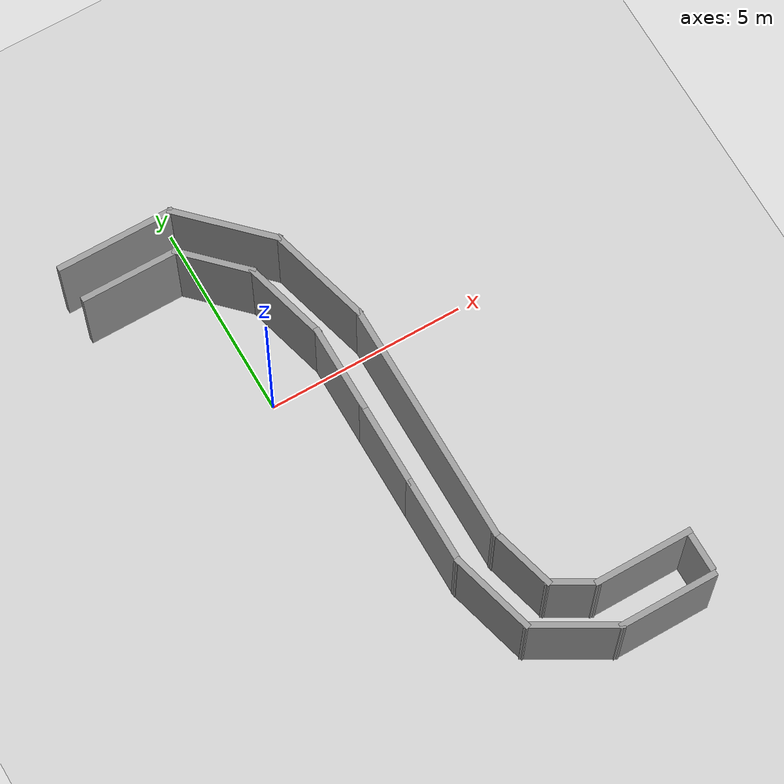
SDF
<sdf version="1.6">
 <world name="default">
  <light name="sun" type="directional">
   <pose>0 0 10 0 -0 0</pose>
   <diffuse>0.8 0.8 0.8 1</diffuse>
   <specular>0.2 0.2 0.2 1</specular>
   <attenuation>
    <range>1000</range>
    <constant>0.9</constant>
    <linear>0.01</linear>
    <quadratic>0.001</quadratic>
   </attenuation>
   <direction>-0.5 0.1 -0.9</direction>
  </light>
  <model name="ground_plane">
   <static>1</static>
   <link name="link">
    <collision name="collision">
     <geometry><plane><normal>0 0 1</normal><size>100 100</size></plane></geometry>
     <surface>
      <contact><collide_bitmask>65535</collide_bitmask></contact>
      <friction><ode><mu>100</mu><mu2>50</mu2></ode></friction>
     </surface>
    </collision>
    <visual name="visual">
     <cast_shadows>0</cast_shadows>
     <geometry><plane><normal>0 0 1</normal><size>100 100</size></plane></geometry>
     <material>
      <script><uri>file://media/materials/scripts/gazebo.material</uri><name>Gazebo/Grey</name></script>
     </material>
    </visual>
   </link>
  </model>
  <gravity>0 0 -9.8</gravity>
  <magnetic_field>6e-06 2.3e-05 -4.2e-05</magnetic_field>
  <atmosphere type="adiabatic"/>
  <physics name="default_physics" default="0" type="ode">
   <max_step_size>0.001</max_step_size>
   <real_time_factor>1</real_time_factor>
   <real_time_update_rate>1000</real_time_update_rate>
  </physics>
  <scene><ambient>0.4 0.4 0.4 1</ambient><background>0.7 0.7 0.7 1</background><shadows>1</shadows></scene>
  <spherical_coordinates>
   <surface_model>EARTH_WGS84</surface_model>
   <latitude_deg>0</latitude_deg>
   <longitude_deg>0</longitude_deg>
   <elevation>0</elevation>
   <heading_deg>0</heading_deg>
  </spherical_coordinates>
  <model name="takis">
   <pose>1.605 -2.26554 0 0 -0 0</pose>
   <link name="Wall_10">
    <collision name="Wall_10_Collision">
     <geometry><box><size>2.25 0.15 2.5</size></box></geometry>
     <pose>0 0 1.25 0 -0 0</pose>
    </collision>
    <visual name="Wall_10_Visual">
     <pose>0 0 1.25 0 -0 0</pose>
     <geometry><box><size>2.25 0.15 2.5</size></box></geometry>
     <material>
      <script><uri>file://media/materials/scripts/gazebo.material</uri><name>Gazebo/Grey</name></script>
      <ambient>1 1 1 1</ambient>
     </material>
     <meta><layer>0</layer></meta>
    </visual>
    <pose>-0.221378 1.49694 0 0 -0 1.5708</pose>
   </link>
   <link name="Wall_11">
    <collision name="Wall_11_Collision">
     <geometry><box><size>2.25 0.15 2.5</size></box></geometry>
     <pose>0 0 1.25 0 -0 0</pose>
    </collision>
    <visual name="Wall_11_Visual">
     <pose>0 0 1.25 0 -0 0</pose>
     <geometry><box><size>2.25 0.15 2.5</size></box></geometry>
     <material>
      <script><uri>file://media/materials/scripts/gazebo.material</uri><name>Gazebo/Grey</name></script>
      <ambient>1 1 1 1</ambient>
     </material>
     <meta><layer>0</layer></meta>
    </visual>
    <pose>-0.493138 3.56116 0 0 -0 1.8326</pose>
   </link>
   <link name="Wall_12">
    <collision name="Wall_12_Collision">
     <geometry><box><size>2 0.15 2.5</size></box></geometry>
     <pose>0 0 1.25 0 -0 0</pose>
    </collision>
    <visual name="Wall_12_Visual">
     <pose>0 0 1.25 0 -0 0</pose>
     <geometry><box><size>2 0.15 2.5</size></box></geometry>
     <material>
      <script><uri>file://media/materials/scripts/gazebo.material</uri><name>Gazebo/Grey</name></script>
      <ambient>1 1 1 1</ambient>
     </material>
     <meta><layer>0</layer></meta>
    </visual>
    <pose>-1.41897 5.22946 0 0 -0 2.35619</pose>
   </link>
   <link name="Wall_13">
    <collision name="Wall_13_Collision">
     <geometry><box><size>2.5 0.15 2.5</size></box></geometry>
     <pose>0 0 1.25 0 -0 0</pose>
    </collision>
    <visual name="Wall_13_Visual">
     <pose>0 0 1.25 0 -0 0</pose>
     <geometry><box><size>2.5 0.15 2.5</size></box></geometry>
     <material>
      <script><uri>file://media/materials/scripts/gazebo.material</uri><name>Gazebo/Grey</name></script>
      <ambient>1 1 1 1</ambient>
     </material>
     <meta><layer>0</layer></meta>
    </visual>
    <pose>-3.24805 5.88354 0 0 -0 3.14159</pose>
   </link>
   <link name="Wall_17">
    <collision name="Wall_17_Collision">
     <geometry><box><size>2.5 0.15 2.5</size></box></geometry>
     <pose>0 0 1.25 0 -0 0</pose>
    </collision>
    <visual name="Wall_17_Visual">
     <pose>0 0 1.25 0 -0 0</pose>
     <geometry><box><size>2.5 0.15 2.5</size></box></geometry>
     <material>
      <script><uri>file://media/materials/scripts/gazebo.material</uri><name>Gazebo/Grey</name></script>
      <ambient>1 1 1 1</ambient>
     </material>
     <meta><layer>0</layer></meta>
    </visual>
    <pose>3.36407 -5.71748 0 0 -0 3.14159</pose>
   </link>
   <link name="Wall_18">
    <collision name="Wall_18_Collision">
     <geometry><box><size>1.25 0.15 2.5</size></box></geometry>
     <pose>0 0 1.25 0 -0 0</pose>
    </collision>
    <visual name="Wall_18_Visual">
     <pose>0 0 1.25 0 -0 0</pose>
     <geometry><box><size>1.25 0.15 2.5</size></box></geometry>
     <material>
      <script><uri>file://media/materials/scripts/gazebo.material</uri><name>Gazebo/Grey</name></script>
      <ambient>1 1 1 1</ambient>
     </material>
     <meta><layer>0</layer></meta>
    </visual>
    <pose>1.71276 -5.44248 0 0 -0 2.61799</pose>
   </link>
   <link name="Wall_19">
    <collision name="Wall_19_Collision">
     <geometry><box><size>1.75 0.15 2.5</size></box></geometry>
     <pose>0 0 1.25 0 -0 0</pose>
    </collision>
    <visual name="Wall_19_Visual">
     <pose>0 0 1.25 0 -0 0</pose>
     <geometry><box><size>1.75 0.15 2.5</size></box></geometry>
     <material>
      <script><uri>file://media/materials/scripts/gazebo.material</uri><name>Gazebo/Grey</name></script>
      <ambient>1 1 1 1</ambient>
     </material>
     <meta><layer>0</layer></meta>
    </visual>
    <pose>1.02939 -4.39474 0 0 -0 1.8326</pose>
   </link>
   <link name="Wall_2">
    <collision name="Wall_2_Collision">
     <geometry><box><size>2.5 0.15 2.5</size></box></geometry>
     <pose>0 0 1.25 0 -0 0</pose>
    </collision>
    <visual name="Wall_2_Visual">
     <pose>0 0 1.25 0 -0 0</pose>
     <geometry><box><size>2.5 0.15 2.5</size></box></geometry>
     <material>
      <script><uri>file://media/materials/scripts/gazebo.material</uri><name>Gazebo/Grey</name></script>
      <ambient>1 1 1 1</ambient>
     </material>
     <meta><layer>0</layer></meta>
    </visual>
    <pose>3.3158 -6.8315 0 0 -0 0</pose>
   </link>
   <link name="Wall_21">
    <collision name="Wall_21_Collision">
     <geometry><box><size>6.25 0.15 2.5</size></box></geometry>
     <pose>0 0 1.25 0 -0 0</pose>
    </collision>
    <visual name="Wall_21_Visual">
     <pose>0 0 1.25 0 -0 0</pose>
     <geometry><box><size>6.25 0.15 2.5</size></box></geometry>
     <material>
      <script><uri>file://media/materials/scripts/gazebo.material</uri><name>Gazebo/Grey</name></script>
      <ambient>1 1 1 1</ambient>
     </material>
     <meta><layer>0</layer></meta>
    </visual>
    <pose>0.822335 -0.571997 0 0 -0 1.5708</pose>
   </link>
   <link name="Wall_22">
    <collision name="Wall_22_Collision">
     <geometry><box><size>2.75 0.15 2.5</size></box></geometry>
     <pose>0 0 1.25 0 -0 0</pose>
    </collision>
    <visual name="Wall_22_Visual">
     <pose>0 0 1.25 0 -0 0</pose>
     <geometry><box><size>2.75 0.15 2.5</size></box></geometry>
     <material>
      <script><uri>file://media/materials/scripts/gazebo.material</uri><name>Gazebo/Grey</name></script>
      <ambient>1 1 1 1</ambient>
     </material>
     <meta><layer>0</layer></meta>
    </visual>
    <pose>0.48587 3.73371 0 0 -0 1.8326</pose>
   </link>
   <link name="Wall_24">
    <collision name="Wall_24_Collision">
     <geometry><box><size>2.75 0.15 2.5</size></box></geometry>
     <pose>0 0 1.25 0 -0 0</pose>
    </collision>
    <visual name="Wall_24_Visual">
     <pose>0 0 1.25 0 -0 0</pose>
     <geometry><box><size>2.75 0.15 2.5</size></box></geometry>
     <material>
      <script><uri>file://media/materials/scripts/gazebo.material</uri><name>Gazebo/Grey</name></script>
      <ambient>1 1 1 1</ambient>
     </material>
     <meta><layer>0</layer></meta>
    </visual>
    <pose>-0.769834 5.90865 0 0 -0 2.35619</pose>
   </link>
   <link name="Wall_25">
    <collision name="Wall_25_Collision">
     <geometry><box><size>3 0.15 2.5</size></box></geometry>
     <pose>0 0 1.25 0 -0 0</pose>
    </collision>
    <visual name="Wall_25_Visual">
     <pose>0 0 1.25 0 -0 0</pose>
     <geometry><box><size>3 0.15 2.5</size></box></geometry>
     <material>
      <script><uri>file://media/materials/scripts/gazebo.material</uri><name>Gazebo/Grey</name></script>
      <ambient>1 1 1 1</ambient>
     </material>
     <meta><layer>0</layer></meta>
    </visual>
    <pose>-3.11407 6.82789 0 0 -0 3.14159</pose>
   </link>
   <link name="Wall_6">
    <collision name="Wall_6_Collision">
     <geometry><box><size>2.25 0.15 2.5</size></box></geometry>
     <pose>0 0 1.25 0 -0 0</pose>
    </collision>
    <visual name="Wall_6_Visual">
     <pose>0 0 1.25 0 -0 0</pose>
     <geometry><box><size>2.25 0.15 2.5</size></box></geometry>
     <material>
      <script><uri>file://media/materials/scripts/gazebo.material</uri><name>Gazebo/Grey</name></script>
      <ambient>1 1 1 1</ambient>
     </material>
     <meta><layer>0</layer></meta>
    </visual>
    <pose>1.23147 -6.3065 0 0 -0 2.61799</pose>
   </link>
   <link name="Wall_7">
    <collision name="Wall_7_Collision">
     <geometry><box><size>2.25 0.15 2.5</size></box></geometry>
     <pose>0 0 1.25 0 -0 0</pose>
    </collision>
    <visual name="Wall_7_Visual">
     <pose>0 0 1.25 0 -0 0</pose>
     <geometry><box><size>2.25 0.15 2.5</size></box></geometry>
     <material>
      <script><uri>file://media/materials/scripts/gazebo.material</uri><name>Gazebo/Grey</name></script>
      <ambient>1 1 1 1</ambient>
     </material>
     <meta><layer>0</layer></meta>
    </visual>
    <pose>0.050382 -4.76728 0 0 -0 1.8326</pose>
   </link>
   <link name="Wall_8">
    <collision name="Wall_8_Collision">
     <geometry><box><size>2.25 0.15 2.5</size></box></geometry>
     <pose>0 0 1.25 0 -0 0</pose>
    </collision>
    <visual name="Wall_8_Visual">
     <pose>0 0 1.25 0 -0 0</pose>
     <geometry><box><size>2.25 0.15 2.5</size></box></geometry>
     <material>
      <script><uri>file://media/materials/scripts/gazebo.material</uri><name>Gazebo/Grey</name></script>
      <ambient>1 1 1 1</ambient>
     </material>
     <meta><layer>0</layer></meta>
    </visual>
    <pose>-0.221378 -2.70306 0 0 -0 1.5708</pose>
   </link>
   <link name="Wall_9">
    <collision name="Wall_9_Collision">
     <geometry><box><size>2.25 0.15 2.5</size></box></geometry>
     <pose>0 0 1.25 0 -0 0</pose>
    </collision>
    <visual name="Wall_9_Visual">
     <pose>0 0 1.25 0 -0 0</pose>
     <geometry><box><size>2.25 0.15 2.5</size></box></geometry>
     <material>
      <script><uri>file://media/materials/scripts/gazebo.material</uri><name>Gazebo/Grey</name></script>
      <ambient>1 1 1 1</ambient>
     </material>
     <meta><layer>0</layer></meta>
    </visual>
    <pose>-0.221378 -0.603057 0 0 -0 1.5708</pose>
   </link>
   <static>1</static>
  </model>
  <model name="takis_new">
   <pose>6.13912 -8.52488 0 0 -0 0</pose>
   <link name="Wall_4">
    <collision name="Wall_4_Collision">
     <geometry><box><size>1 0.15 2.5</size></box></geometry>
     <pose>0 0 1.25 0 -0 0</pose>
    </collision>
    <visual name="Wall_4_Visual">
     <pose>0 0 1.25 0 -0 0</pose>
     <geometry><box><size>1 0.15 2.5</size></box></geometry>
     <material>
      <script><uri>file://media/materials/scripts/gazebo.material</uri><name>Gazebo/Grey</name></script>
      <ambient>1 1 1 1</ambient>
     </material>
     <meta><layer>0</layer></meta>
    </visual>
    <pose>0 0 0 0 0 -1.5708</pose>
   </link>
   <static>1</static>
  </model>
 </world>
</sdf>
